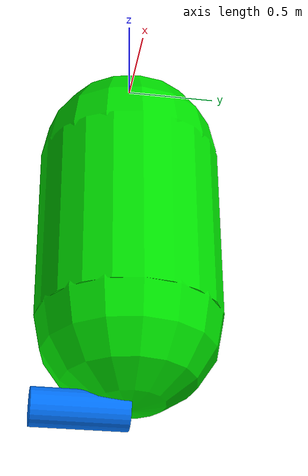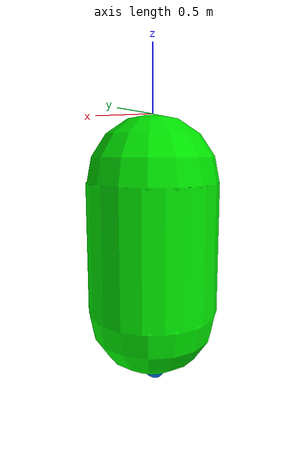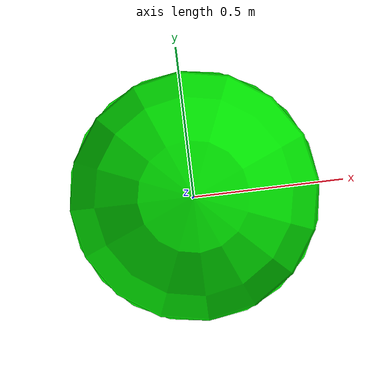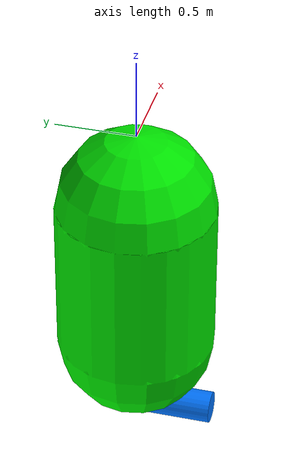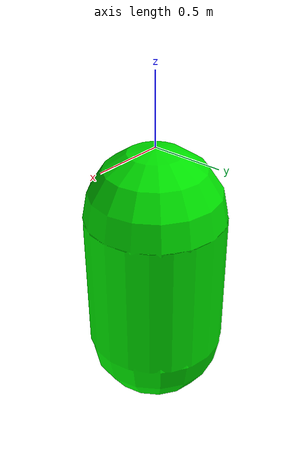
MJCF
<mujoco>
    <option timestep="0.001" integrator="Euler">
		<flag gravity="disable" energy="enable"/>
	</option>
    <visual>
         <global offheight="1024" offwidth="1024" azimuth="90" elevation="-30"/>
    </visual>
    <statistic extent="5" center="0 0 0"/>

    <compiler autolimits="true"/>
    <worldbody>
        <light diffuse=".5 .5 .5" pos="0 0 3" dir="0 0 -1"/>
        <geom type="plane" pos="0 0 -10" size="3 3 0.1" rgba=".9 0 0 1"/>
        <body name="my_body" pos="0 0 -1" euler="0 0 0">
            <joint name="joint_y" type="hinge" pos="0 0 1" axis="0 -1 0"/>
            <joint name="joint_x" type="hinge" pos="0 0 1" axis="-1 0 0"/>
            <joint name="joint_z_twist" type="hinge" pos="0 0 1" range="-0.000001 0.000001" axis="0 0 -1" solreflimit="-10 -150"/>
            <inertial pos="0 0 0" euler="0 0 0" mass="1" diaginertia="0.66667 0.66667 0.66667"/>
            <geom type="capsule" size="0.5 0.5" rgba="0 .9 0 1" mass="1" solref="-10 -150" solimp="0 0 0" friction="0 0 0" condim="1" priority="0"/>
            <geom type="cylinder" pos="0 -0.25 -1" euler="90 0 0" size="0.1 0.25" rgba="0 0.455 1 1" mass="1"/>
        </body>
        <body name="ceiling" pos="0 0 1" euler="0 0 0">
            <geom type="box" size="3 3 0.5" rgba="1 0 0 0" solref="-10 -150" solimp="0 0 0" friction="0 0 0" condim="1" priority="1"/>
        </body>
    </worldbody>
</mujoco>
